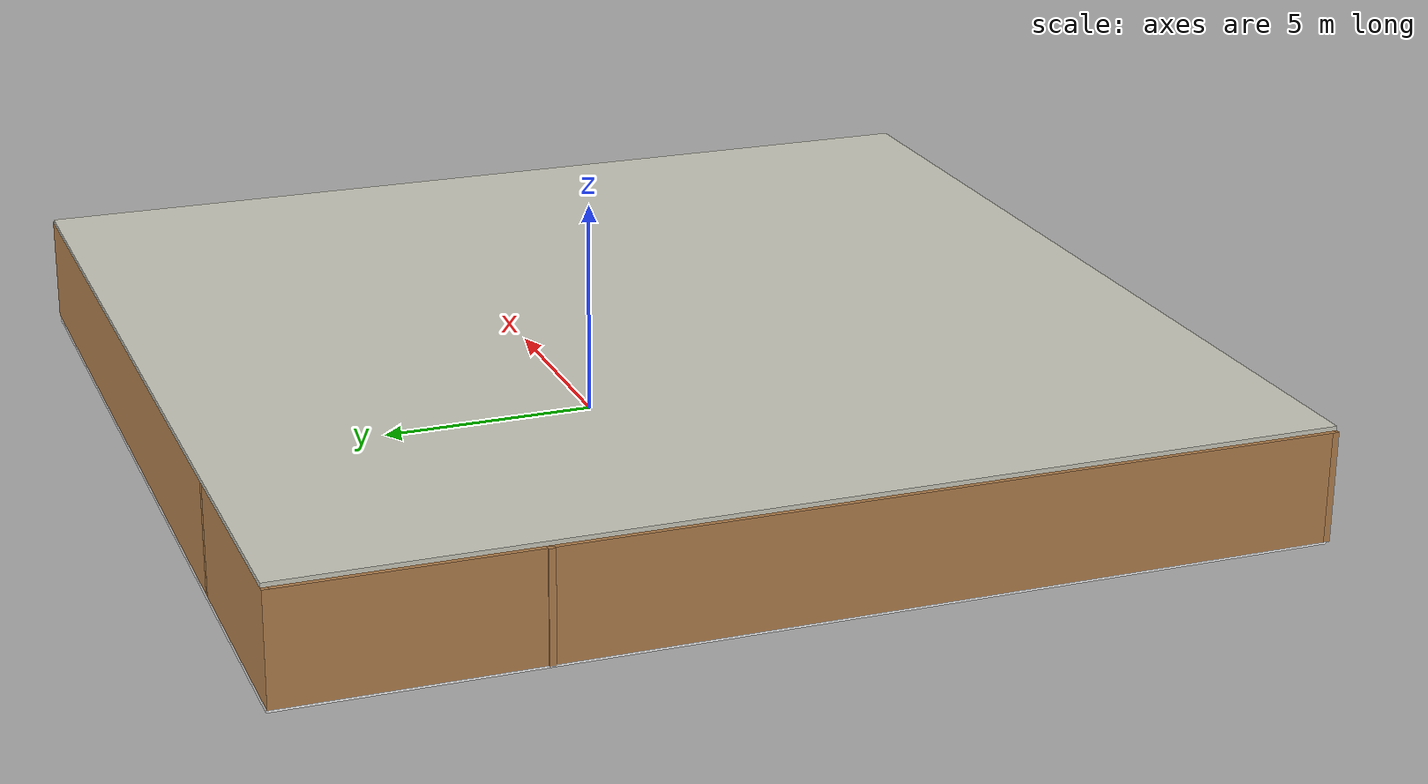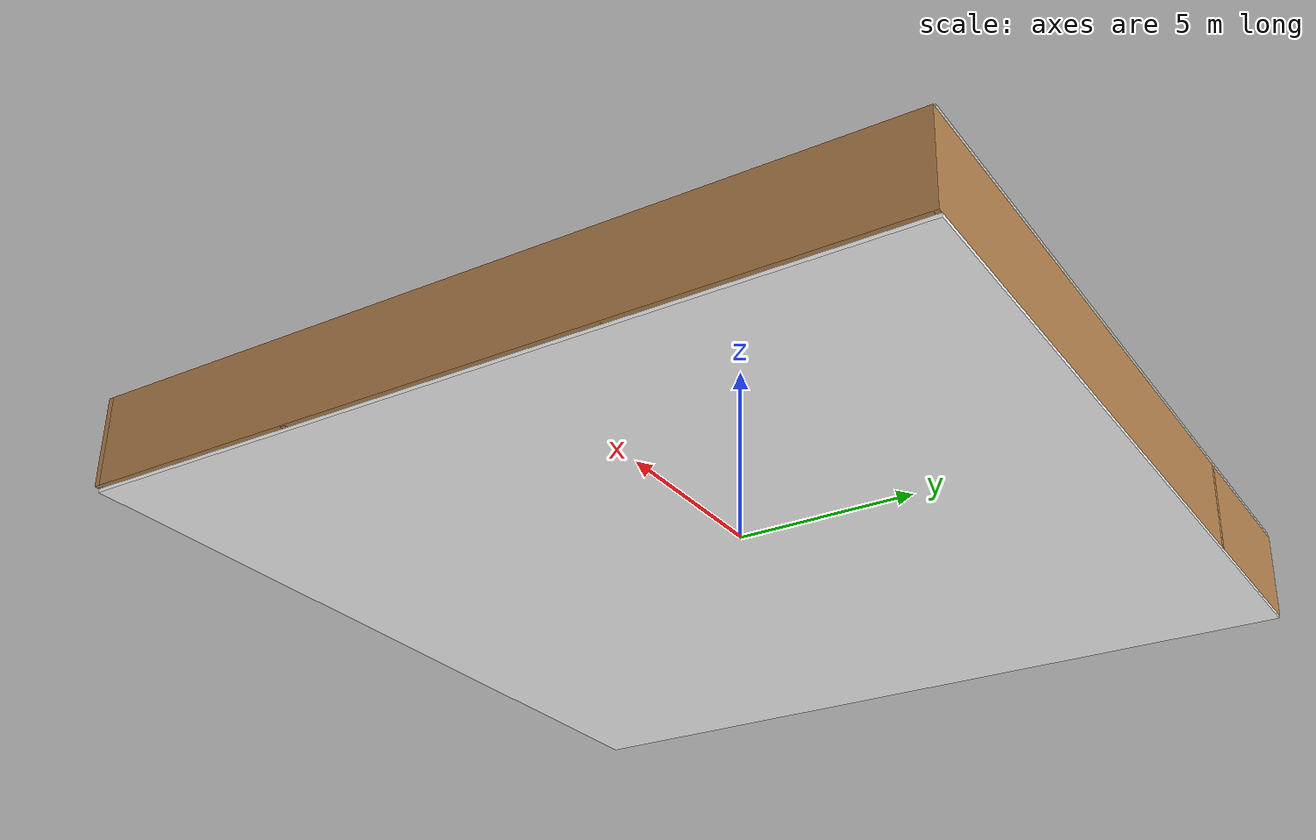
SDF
<?xml version='1.0'?>
<sdf version='1.7'>
  <model name='pilothouse'>
    <pose>-0.904449 -0.799752 0 0 -0 0</pose>
    <!-- Floor link with texture -->
    <link name='Floor'>
      <collision name='Floor_Collision'>
        <geometry>
          <box>
            <size>23 23 0.1</size>
          </box>
        </geometry>
        <pose>0 0 0 0 -0 0</pose>
      </collision>
      <visual name='Floor_Visual'>
        <pose>0 0 0 0 -0 0</pose>
        <geometry>
          <box>
            <size>23 23 0.1</size>
          </box>
        </geometry>
        <material>
          <script>
            <uri>file://media/materials/scripts/gazebo.material</uri>
            <name>Gazebo/Footpath</name>
          </script>
          <ambient>1 1 1 1</ambient>
        </material>
        <meta>
          <layer>0</layer>
        </meta>
      </visual>
      <pose>0 0 -0.05 0 -0 0</pose>
    </link>

    <!-- Roof link with texture -->
    <link name='Roof'>
      <collision name='Roof_Collision'>
        <geometry>
          <box>
            <size>23 23 0.1</size>
          </box>
        </geometry>
        <pose>0 0 0 0 -0 0</pose>
      </collision>
      <visual name='Roof_Visual'>
        <pose>0 0 0 0 -0 0</pose>
        <geometry>
          <box>
            <size>23 23 0.1</size>
          </box>
        </geometry>
        <material>
          <script>
            <uri>file://media/materials/scripts/gazebo.material</uri>
            <name>Gazebo/PaintedWall</name>
          </script>
          <ambient>0.8 0.8 0.8 1</ambient>
        </material>
        <meta>
          <layer>0</layer>
        </meta>
      </visual>
      <pose>0 0 2.55 0 -0 0</pose>
    </link>

    <link name='Wall_10'>
      <collision name='Wall_10_Collision'>
        <geometry>
          <box>
            <size>23 0.15 2.5</size>
          </box>
        </geometry>
        <pose>0 0 1.25 0 -0 0</pose>
      </collision>
      <visual name='Wall_10_Visual'>
        <pose>0 0 1.25 0 -0 0</pose>
        <geometry>
          <box>
            <size>23 0.15 2.5</size>
          </box>
        </geometry>
        <material>
          <script>
            <uri>file://media/materials/scripts/gazebo.material</uri>
            <name>Gazebo/Wood</name>
          </script>
          <ambient>1 1 1 1</ambient>
        </material>
        <meta>
          <layer>0</layer>
        </meta>
      </visual>
      <pose>-11.5307 -0.000635 0 0 -0 1.5708</pose>
    </link>
    <link name='Wall_11'>
      <collision name='Wall_11_Collision'>
        <geometry>
          <box>
            <size>23.25 0.15 2.5</size>
          </box>
        </geometry>
        <pose>0 0 1.25 0 -0 0</pose>
      </collision>
      <visual name='Wall_11_Visual'>
        <pose>0 0 1.25 0 -0 0</pose>
        <geometry>
          <box>
            <size>23.25 0.15 2.5</size>
          </box>
        </geometry>
        <material>
          <script>
            <uri>file://media/materials/scripts/gazebo.material</uri>
            <name>Gazebo/Wood</name>
          </script>
          <ambient>1 1 1 1</ambient>
        </material>
        <meta>
          <layer>0</layer>
        </meta>
      </visual>
      <pose>0.019314 11.4244 0 0 -0 0</pose>
    </link>
    <link name='Wall_12'>
      <collision name='Wall_12_Collision'>
        <geometry>
          <box>
            <size>23 0.15 2.5</size>
          </box>
        </geometry>
        <pose>0 0 1.25 0 -0 0</pose>
      </collision>
      <visual name='Wall_12_Visual'>
        <pose>0 0 1.25 0 -0 0</pose>
        <geometry>
          <box>
            <size>23 0.15 2.5</size>
          </box>
        </geometry>
        <material>
          <script>
            <uri>file://media/materials/scripts/gazebo.material</uri>
            <name>Gazebo/Wood</name>
          </script>
          <ambient>1 1 1 1</ambient>
        </material>
        <meta>
          <layer>0</layer>
        </meta>
      </visual>
      <pose>11.5693 -0.000635 0 0 -0 -1.5708</pose>
    </link>
    <link name='Wall_13'>
      <collision name='Wall_13_Collision'>
        <geometry>
          <box>
            <size>23.25 0.15 2.5</size>
          </box>
        </geometry>
        <pose>0 0 1.25 0 -0 0</pose>
      </collision>
      <visual name='Wall_13_Visual'>
        <pose>0 0 1.25 0 -0 0</pose>
        <geometry>
          <box>
            <size>23.25 0.15 2.5</size>
          </box>
        </geometry>
        <material>
          <script>
            <uri>file://media/materials/scripts/gazebo.material</uri>
            <name>Gazebo/Wood</name>
          </script>
          <ambient>1 1 1 1</ambient>
        </material>
        <meta>
          <layer>0</layer>
        </meta>
      </visual>
      <pose>0.019314 -11.4256 0 0 -0 3.14159</pose>
    </link>
    <link name='Wall_16'>
      <collision name='Wall_16_Collision'>
        <geometry>
          <box>
            <size>5.5 0.15 2.5</size>
          </box>
        </geometry>
        <pose>0 0 1.25 0 -0 0</pose>
      </collision>
      <visual name='Wall_16_Visual'>
        <pose>0 0 1.25 0 -0 0</pose>
        <geometry>
          <box>
            <size>5.5 0.15 2.5</size>
          </box>
        </geometry>
        <material>
          <script>
            <uri>file://media/materials/scripts/gazebo.material</uri>
            <name>Gazebo/Wood</name>
          </script>
          <ambient>1 1 1 1</ambient>
        </material>
        <meta>
          <layer>0</layer>
        </meta>
      </visual>
      <pose>-8.89432 5.84345 0 0 -0 0</pose>
    </link>
    <link name='Wall_18'>
      <collision name='Wall_18_Collision'>
        <geometry>
          <box>
            <size>3.5 0.15 2.5</size>
          </box>
        </geometry>
        <pose>0 0 1.25 0 -0 0</pose>
      </collision>
      <visual name='Wall_18_Visual'>
        <pose>0 0 1.25 0 -0 0</pose>
        <geometry>
          <box>
            <size>3.5 0.15 2.5</size>
          </box>
        </geometry>
        <material>
          <script>
            <uri>file://media/materials/scripts/gazebo.material</uri>
            <name>Gazebo/Wood</name>
          </script>
          <ambient>1 1 1 1</ambient>
        </material>
        <meta>
          <layer>0</layer>
        </meta>
      </visual>
      <pose>-6.21651 9.75064 0 0 -0 -1.5708</pose>
    </link>
    <link name='Wall_20'>
      <collision name='Wall_20_Collision'>
        <geometry>
          <box>
            <size>3.5 0.15 2.5</size>
          </box>
        </geometry>
        <pose>0 0 1.25 0 -0 0</pose>
      </collision>
      <visual name='Wall_20_Visual'>
        <pose>0 0 1.25 0 -0 0</pose>
        <geometry>
          <box>
            <size>3.5 0.15 2.5</size>
          </box>
        </geometry>
        <material>
          <script>
            <uri>file://media/materials/scripts/gazebo.material</uri>
            <name>Gazebo/Wood</name>
          </script>
          <ambient>1 1 1 1</ambient>
        </material>
        <meta>
          <layer>0</layer>
        </meta>
      </visual>
      <pose>-6.21932 4.16845 0 0 -0 -1.5708</pose>
    </link>
    <link name='Wall_22'>
      <collision name='Wall_22_Collision'>
        <geometry>
          <box>
            <size>4.5 0.15 2.5</size>
          </box>
        </geometry>
        <pose>0 0 1.25 0 -0 0</pose>
      </collision>
      <visual name='Wall_22_Visual'>
        <pose>0 0 1.25 0 -0 0</pose>
        <geometry>
          <box>
            <size>4.5 0.15 2.5</size>
          </box>
        </geometry>
        <material>
          <script>
            <uri>file://media/materials/scripts/gazebo.material</uri>
            <name>Gazebo/Wood</name>
          </script>
          <ambient>1 1 1 1</ambient>
        </material>
        <meta>
          <layer>0</layer>
        </meta>
      </visual>
      <pose>-6.26868 -1.65371 0 0 -0 -1.5708</pose>
    </link>
    <link name='Wall_23'>
      <collision name='Wall_23_Collision'>
        <geometry>
          <box>
            <size>5.25 0.15 2.5</size>
          </box>
        </geometry>
        <pose>0 0 1.25 0 -0 0</pose>
      </collision>
      <visual name='Wall_23_Visual'>
        <pose>0 0 1.25 0 -0 0</pose>
        <geometry>
          <box>
            <size>5.25 0.15 2.5</size>
          </box>
        </geometry>
        <material>
          <script>
            <uri>file://media/materials/scripts/gazebo.material</uri>
            <name>Gazebo/Wood</name>
          </script>
          <ambient>1 1 1 1</ambient>
        </material>
        <meta>
          <layer>0</layer>
        </meta>
      </visual>
      <pose>-8.81869 -3.82871 0 0 -0 3.14159</pose>
    </link>
    <link name='Wall_25'>
      <collision name='Wall_25_Collision'>
        <geometry>
          <box>
            <size>12.5 0.15 2.5</size>
          </box>
        </geometry>
        <pose>0 0 1.25 0 -0 0</pose>
      </collision>
      <visual name='Wall_25_Visual'>
        <pose>0 0 1.25 0 -0 0</pose>
        <geometry>
          <box>
            <size>12.5 0.15 2.5</size>
          </box>
        </geometry>
        <material>
          <script>
            <uri>file://media/materials/scripts/gazebo.material</uri>
            <name>Gazebo/Wood</name>
          </script>
          <ambient>1 1 1 1</ambient>
        </material>
        <meta>
          <layer>0</layer>
        </meta>
      </visual>
      <pose>5.34762 -5.32219 0 0 -0 3.14159</pose>
    </link>
    <link name='Wall_26'>
      <collision name='Wall_26_Collision'>
        <geometry>
          <box>
            <size>6.25 0.15 2.5</size>
          </box>
        </geometry>
        <pose>0 0 1.25 0 -0 0</pose>
      </collision>
      <visual name='Wall_26_Visual'>
        <pose>0 0 1.25 0 -0 0</pose>
        <geometry>
          <box>
            <size>6.25 0.15 2.5</size>
          </box>
        </geometry>
        <material>
          <script>
            <uri>file://media/materials/scripts/gazebo.material</uri>
            <name>Gazebo/Wood</name>
          </script>
          <ambient>1 1 1 1</ambient>
        </material>
        <meta>
          <layer>0</layer>
        </meta>
      </visual>
      <pose>-0.827381 -2.27219 0 0 -0 1.5708</pose>
    </link>
    <link name='Wall_28'>
      <collision name='Wall_28_Collision'>
        <geometry>
          <box>
            <size>2.25 0.15 2.5</size>
          </box>
        </geometry>
        <pose>0 0 1.25 0 -0 0</pose>
      </collision>
      <visual name='Wall_28_Visual'>
        <pose>0 0 1.25 0 -0 0</pose>
        <geometry>
          <box>
            <size>2.25 0.15 2.5</size>
          </box>
        </geometry>
        <material>
          <script>
            <uri>file://media/materials/scripts/gazebo.material</uri>
            <name>Gazebo/Wood</name>
          </script>
          <ambient>1 1 1 1</ambient>
        </material>
        <meta>
          <layer>0</layer>
        </meta>
      </visual>
      <pose>0.222619 0.77781 0 0 -0 0</pose>
    </link>
    <link name='Wall_30'>
      <collision name='Wall_30_Collision'>
        <geometry>
          <box>
            <size>5.75 0.15 2.5</size>
          </box>
        </geometry>
        <pose>0 0 1.25 0 -0 0</pose>
      </collision>
      <visual name='Wall_30_Visual'>
        <pose>0 0 1.25 0 -0 0</pose>
        <geometry>
          <box>
            <size>5.75 0.15 2.5</size>
          </box>
        </geometry>
        <material>
          <script>
            <uri>file://media/materials/scripts/gazebo.material</uri>
            <name>Gazebo/Wood</name>
          </script>
          <ambient>1 1 1 1</ambient>
        </material>
        <meta>
          <layer>0</layer>
        </meta>
      </visual>
      <pose>6.24498 0.83243 0 0 -0 0</pose>
    </link>
    <link name='Wall_32'>
      <collision name='Wall_32_Collision'>
        <geometry>
          <box>
            <size>6.25 0.15 2.5</size>
          </box>
        </geometry>
        <pose>0 0 1.25 0 -0 0</pose>
      </collision>
      <visual name='Wall_32_Visual'>
        <pose>0 0 1.25 0 -0 0</pose>
        <geometry>
          <box>
            <size>6.25 0.15 2.5</size>
          </box>
        </geometry>
        <material>
          <script>
            <uri>file://media/materials/scripts/gazebo.material</uri>
            <name>Gazebo/Wood</name>
          </script>
          <ambient>1 1 1 1</ambient>
        </material>
        <meta>
          <layer>0</layer>
        </meta>
      </visual>
      <pose>6.12172 -2.26294 0 0 -0 -1.5708</pose>
    </link>
    <link name='Wall_34'>
      <collision name='Wall_34_Collision'>
        <geometry>
          <box>
            <size>3.5 0.15 2.5</size>
          </box>
        </geometry>
        <pose>0 0 1.25 0 -0 0</pose>
      </collision>
      <visual name='Wall_34_Visual'>
        <pose>0 0 1.25 0 -0 0</pose>
        <geometry>
          <box>
            <size>3.5 0.15 2.5</size>
          </box>
        </geometry>
        <material>
          <script>
            <uri>file://media/materials/scripts/gazebo.material</uri>
            <name>Gazebo/Wood</name>
          </script>
          <ambient>1 1 1 1</ambient>
        </material>
        <meta>
          <layer>0</layer>
        </meta>
      </visual>
      <pose>9.80022 3.55455 0 0 -0 3.14159</pose>
    </link>
    <link name='Wall_36'>
      <collision name='Wall_36_Collision'>
        <geometry>
          <box>
            <size>5 0.15 2.5</size>
          </box>
        </geometry>
        <pose>0 0 1.25 0 -0 0</pose>
      </collision>
      <visual name='Wall_36_Visual'>
        <pose>0 0 1.25 0 -0 0</pose>
        <geometry>
          <box>
            <size>5 0.15 2.5</size>
          </box>
        </geometry>
        <material>
          <script>
            <uri>file://media/materials/scripts/gazebo.material</uri>
            <name>Gazebo/Wood</name>
          </script>
          <ambient>1 1 1 1</ambient>
        </material>
        <meta>
          <layer>0</layer>
        </meta>
      </visual>
      <pose>3.28841 3.55455 0 0 -0 3.14159</pose>
    </link>
    <link name='Wall_37'>
      <collision name='Wall_37_Collision'>
        <geometry>
          <box>
            <size>8 0.15 2.5</size>
          </box>
        </geometry>
        <pose>0 0 1.25 0 -0 0</pose>
      </collision>
      <visual name='Wall_37_Visual'>
        <pose>0 0 1.25 0 -0 0</pose>
        <geometry>
          <box>
            <size>8 0.15 2.5</size>
          </box>
        </geometry>
        <material>
          <script>
            <uri>file://media/materials/scripts/gazebo.material</uri>
            <name>Gazebo/Wood</name>
          </script>
          <ambient>1 1 1 1</ambient>
        </material>
        <meta>
          <layer>0</layer>
        </meta>
      </visual>
      <pose>0.863406 7.47955 0 0 -0 1.5708</pose>
    </link>
    <static>1</static>
  </model>
</sdf>
